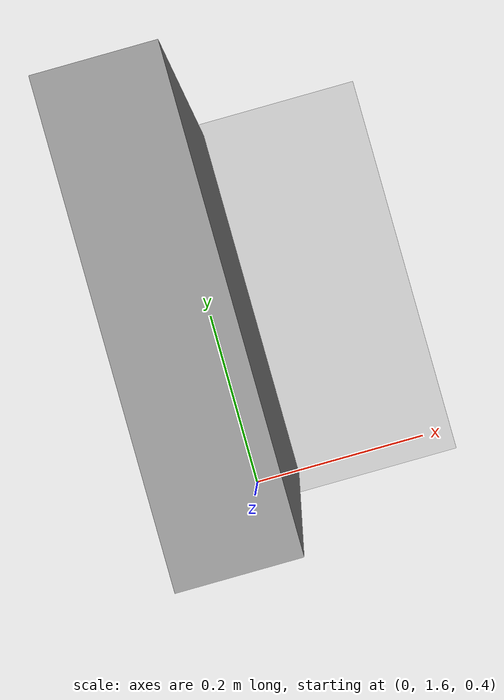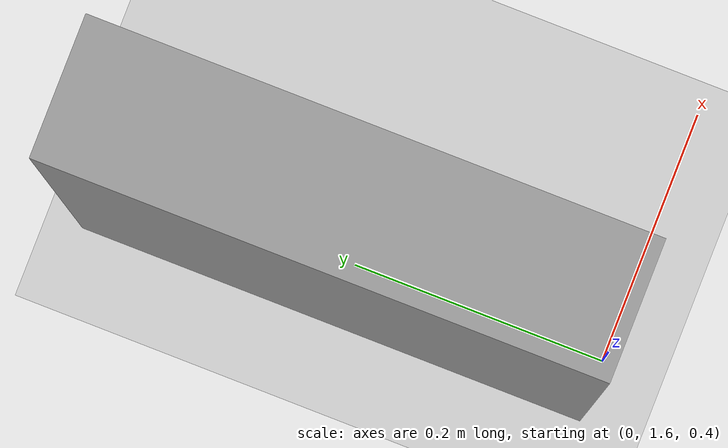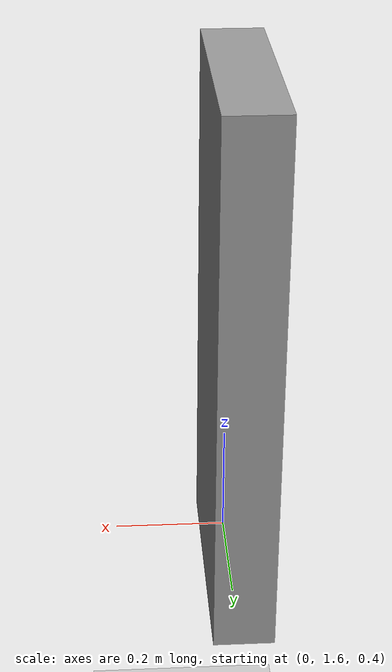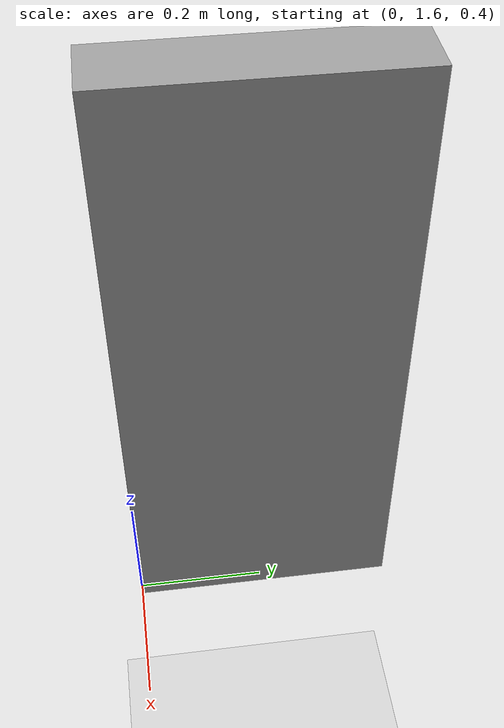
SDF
<?xml version="1.0" ?>
<sdf version="1.5">
  <world name="default">
    <physics type="ode">
      <gravity>0 0 -9.81</gravity>
    </physics>
    <include>
      <uri>model://sun</uri>
    </include>
    <include>
      <uri>model://ground_plane</uri>
    </include>
    <model name="box">
      <pose>0 1.8 0.9  0 0 0</pose>
      <link name="link">
        <inertial>
          <mass>10</mass>
          <inertia>
            <ixx>0.808333333333333</ixx>
            <iyy>0.683333333333333</iyy>
            <izz>0.141666666666667</izz>
            <ixy>0</ixy>
            <ixz>0</ixz>
            <iyz>0</iyz>
          </inertia>
        </inertial>
        <collision name="collision">
          <geometry>
            <box>
              <size>0.1 0.4 0.9</size>
            </box>
          </geometry>
        </collision>
        <visual name="visual">
          <geometry>
            <box>
              <size>0.1 0.4 0.9</size>
            </box>
          </geometry>
          <material>
            <script>
              <uri>file://media/materials/scripts/gazebo.material</uri>
              <name>Gazebo/Grey</name>
            </script>
          </material>
        </visual>
      </link>
      <plugin name="large_wz" filename="libInitialVelocityPlugin.so">
        <linear>-1 -1 5</linear>
        <angular>0.1 5.0 0.1</angular>
      </plugin>
    </model>
    <gui fullscreen='0'>
      <camera name='user_camera'>
        <pose>5.5 0.0 0.9  0 0 3.14159</pose>
        <view_controller>orbit</view_controller>
      </camera>
    </gui>
  </world>
</sdf>
